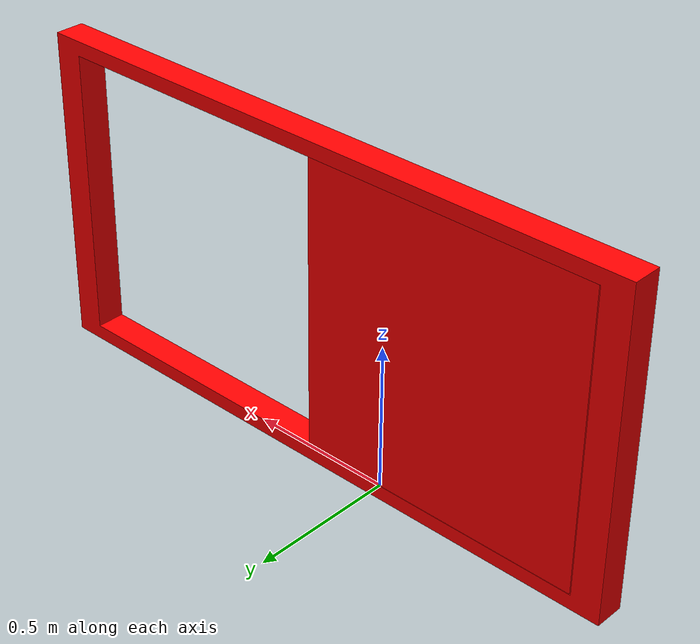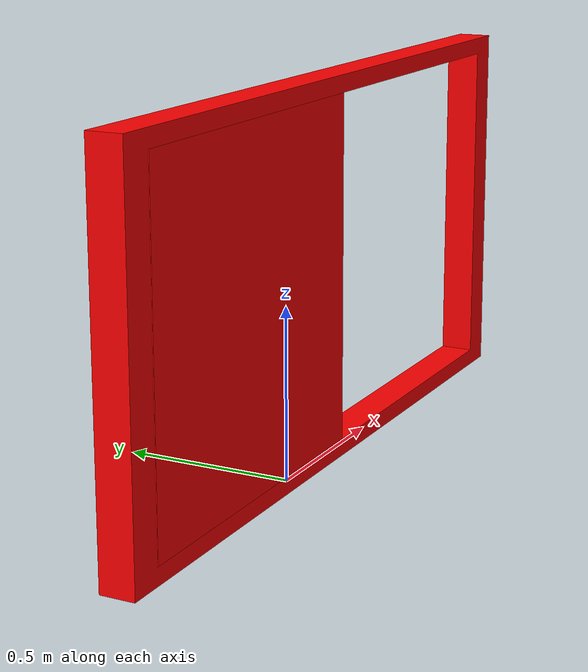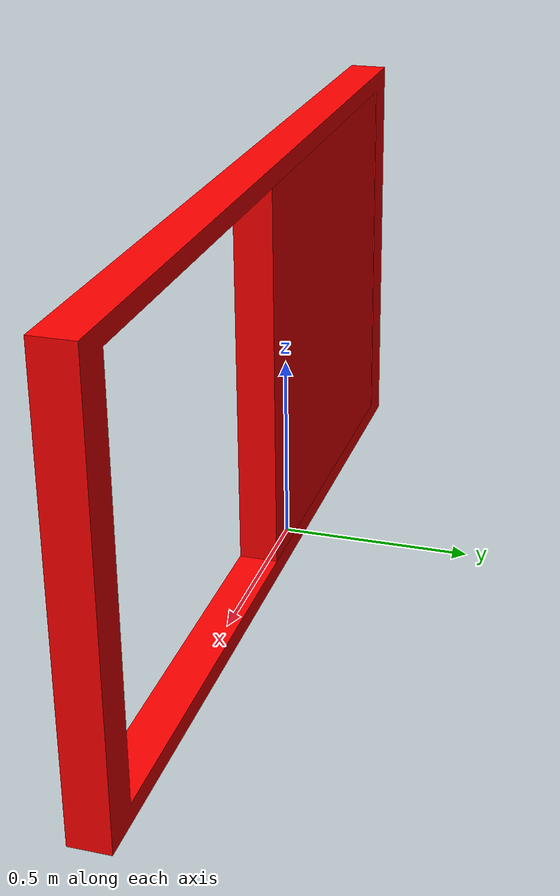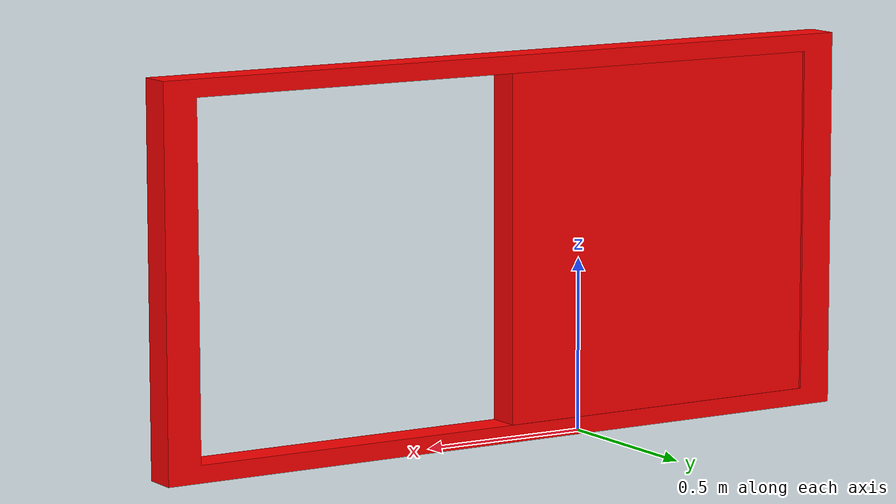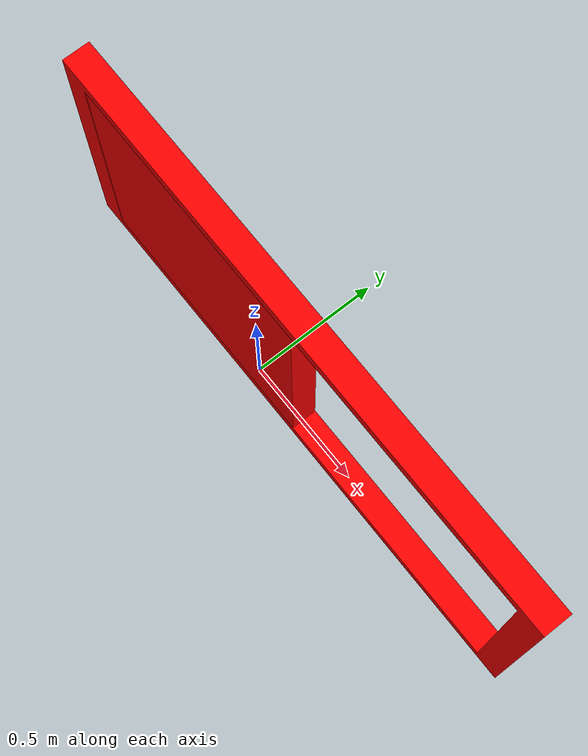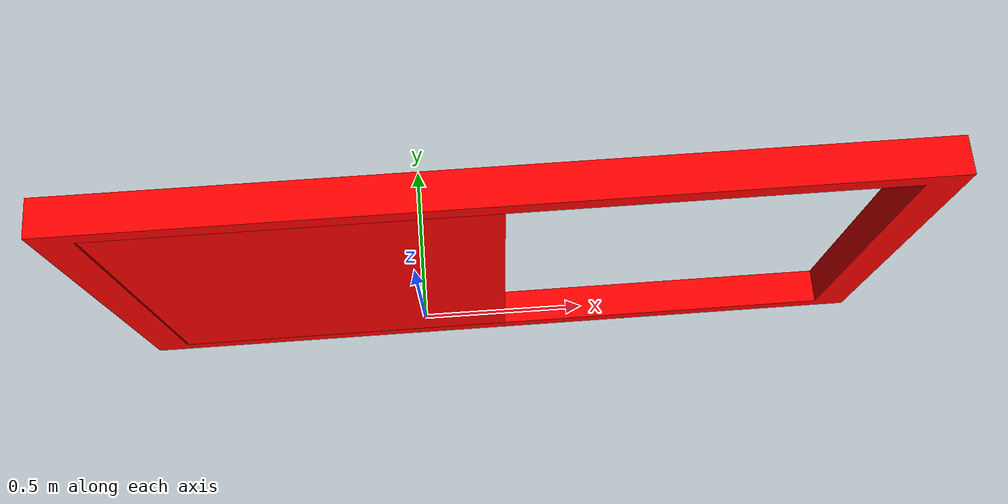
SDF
<?xml version='1.0'?>
<sdf version='1.7'>
  <model name='moving_window'>

    <link name='link_0'>
      <kinematic>true</kinematic>
      <gravity>1</gravity>
      <inertial>
        <mass>1</mass>
        <inertia>
          <ixx>0.166667</ixx>
          <ixy>0</ixy>
          <ixz>0</ixz>
          <iyy>0.166667</iyy>
          <iyz>0</iyz>
          <izz>0.166667</izz>
        </inertia>
      </inertial>
      <pose>0.24776 0.00025 -0.049962 0 -0 0</pose>
      <visual name='visual'>
        <pose>0 0 0 0 -0 0</pose>
        <geometry>
          <mesh>
            <uri>model://moving_window/meshes/window_frame.stl</uri>
            <scale>1 1 1</scale>
          </mesh>
        </geometry>
        <material>
          <lighting>1</lighting>
          <script>
            <uri>file://media/materials/scripts/gazebo.material</uri>
            <name>Gazebo/Grey</name>
          </script>
          <shader type='pixel'/>
          <ambient>1 0 0 1</ambient>
          <diffuse>0.7 0.7 0.7 1</diffuse>
          <specular>0.01 0.01 0.01 1</specular>
          <emissive>0 0 0 1</emissive>
        </material>
        <transparency>0</transparency>
        <cast_shadows>1</cast_shadows>
      </visual>

      <collision name='collision'>
        <laser_retro>0</laser_retro>
        <max_contacts>10</max_contacts>
        <pose>0 0 0 0 -0 0</pose>
        <geometry>
          <mesh>
            <uri>model://moving_window/meshes/window_frame.stl</uri>
            <scale>1 1 1</scale>
          </mesh>
        </geometry>
        <surface>
          <friction>
            <ode>
              <mu>1</mu>
              <mu2>1</mu2>
              <fdir1>0 0 0</fdir1>
              <slip1>0</slip1>
              <slip2>0</slip2>
            </ode>
            <torsional>
              <coefficient>1</coefficient>
              <patch_radius>0</patch_radius>
              <surface_radius>0</surface_radius>
              <use_patch_radius>1</use_patch_radius>
              <ode>
                <slip>0</slip>
              </ode>
            </torsional>
          </friction>
          <bounce>
            <restitution_coefficient>0</restitution_coefficient>
            <threshold>1e+06</threshold>
          </bounce>
          <contact>
            <collide_without_contact>0</collide_without_contact>
            <collide_without_contact_bitmask>1</collide_without_contact_bitmask>
            <collide_bitmask>1</collide_bitmask>
            <ode>
              <soft_cfm>0</soft_cfm>
              <soft_erp>0.2</soft_erp>
              <kp>1e+13</kp>
              <kd>1</kd>
              <max_vel>1</max_vel>
              <min_depth>0</min_depth>
            </ode>
            <bullet>
              <split_impulse>1</split_impulse>
              <split_impulse_penetration_threshold>-0.01</split_impulse_penetration_threshold>
              <soft_cfm>0</soft_cfm>
              <soft_erp>0.2</soft_erp>
              <kp>1e+13</kp>
              <kd>1</kd>
            </bullet>
          </contact>
        </surface>
      </collision>
    </link>

    <link name='link_1'>
    <static>true</static>
      <pose>-0.24776 -0.00025 0.049962 0 -0 0</pose>
      <visual name='visual'>
        <pose>0 0 0 0 -0 0</pose>
        <geometry>
          <mesh>
            <uri>model://moving_window/meshes/window_obstruction.stl</uri>
            <scale>1 1 1</scale>
          </mesh>
        </geometry>
        <material>
          <lighting>1</lighting>
          <script>
            <uri>file://media/materials/scripts/gazebo.material</uri>
            <name>Gazebo/Grey</name>
          </script>
          <shader type='pixel'/>
          <ambient>1 0 0 1</ambient>
          <diffuse>0.7 0.7 0.7 1</diffuse>
          <specular>0.01 0.01 0.01 1</specular>
          <emissive>0 0 0 1</emissive>
        </material>
        <transparency>0</transparency>
        <cast_shadows>1</cast_shadows>
      </visual>
      <collision name='collision'>
        <laser_retro>0</laser_retro>
        <max_contacts>10</max_contacts>
        <pose>0 0 0 0 -0 0</pose>
        <geometry>
          <mesh>
            <uri>model://moving_window/meshes/window_obstruction.stl</uri>
            <scale>1 1 1</scale>
          </mesh>
        </geometry>
        <surface>
          <friction>
            <ode>
              <mu>1</mu>
              <mu2>1</mu2>
              <fdir1>0 0 0</fdir1>
              <slip1>0</slip1>
              <slip2>0</slip2>
            </ode>
            <torsional>
              <coefficient>1</coefficient>
              <patch_radius>0</patch_radius>
              <surface_radius>0</surface_radius>
              <use_patch_radius>1</use_patch_radius>
              <ode>
                <slip>0</slip>
              </ode>
            </torsional>
          </friction>
          <bounce>
            <restitution_coefficient>0</restitution_coefficient>
            <threshold>1e+06</threshold>
          </bounce>
          <contact>
            <collide_without_contact>0</collide_without_contact>
            <collide_without_contact_bitmask>1</collide_without_contact_bitmask>
            <collide_bitmask>1</collide_bitmask>
            <ode>
              <soft_cfm>0</soft_cfm>
              <soft_erp>0.2</soft_erp>
              <kp>1e+13</kp>
              <kd>1</kd>
              <max_vel>0.01</max_vel>
              <min_depth>0</min_depth>
            </ode>
            <bullet>
              <split_impulse>1</split_impulse>
              <split_impulse_penetration_threshold>-0.01</split_impulse_penetration_threshold>
              <soft_cfm>0</soft_cfm>
              <soft_erp>0.2</soft_erp>
              <kp>1e+13</kp>
              <kd>1</kd>
            </bullet>
          </contact>
        </surface>
      </collision>
    </link>

    <joint name='link_1_JOINT_0' type='prismatic'>
      <parent>link_0</parent>
      <child>link_1</child>
      <pose>0 0 0 0 0 0</pose>
      <axis>
        <xyz>1 0 0</xyz>
      </axis>
    </joint>

    <plugin name="SHM_plugin" filename="libSHMplugin.so">
        <joint_name>link_1_JOINT_0</joint_name>
        <amplitude>0.5</amplitude>
        <frequency>0.25</frequency>
        <phase>1.57</phase>
        <offset>-1.075</offset>
    </plugin>
  </model>
</sdf>
